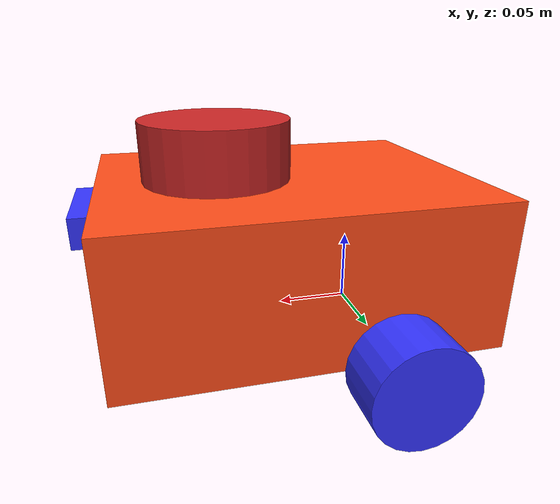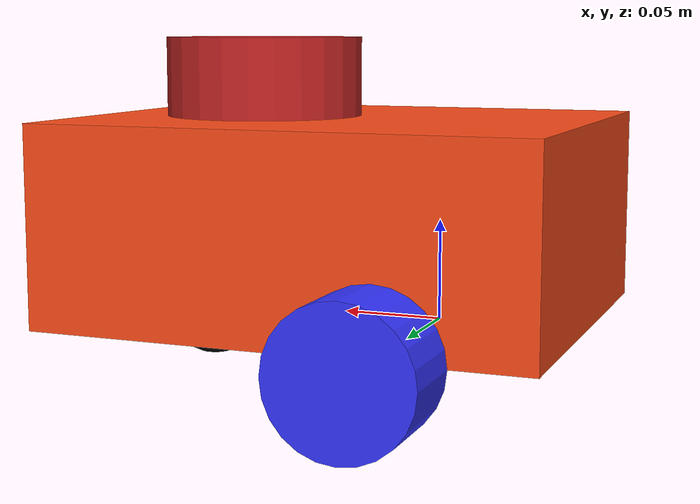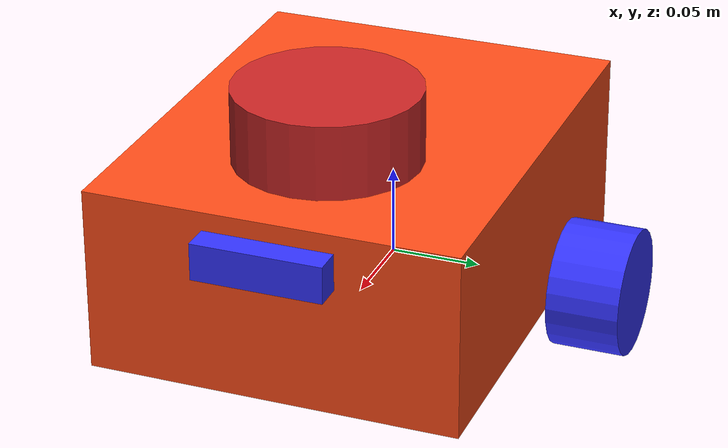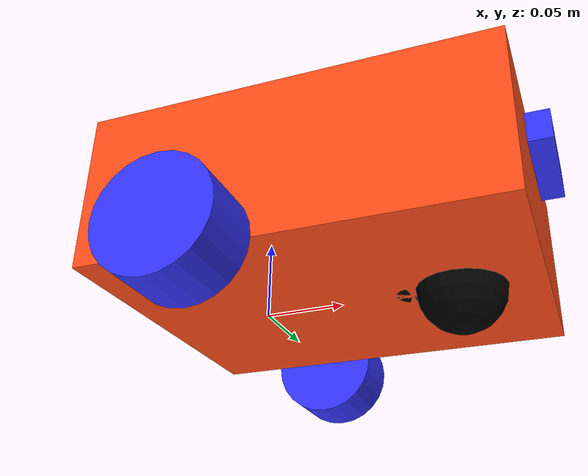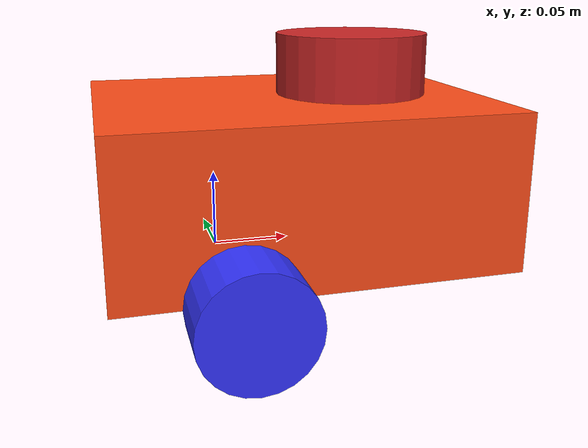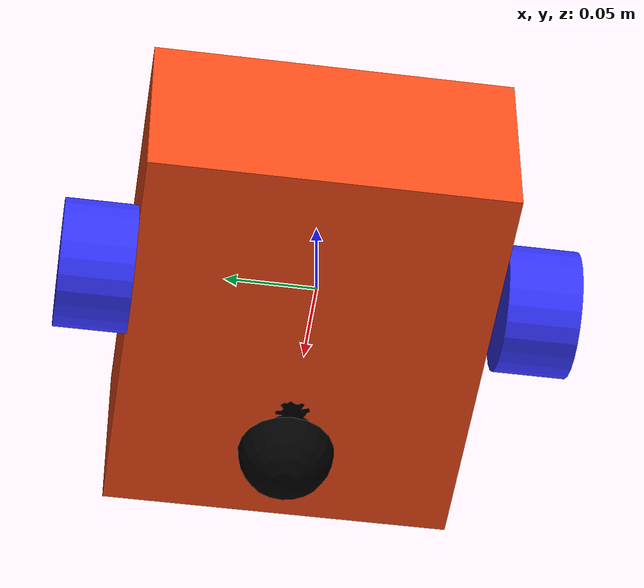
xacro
<?xml version="1.0"?>
<robot xmlns:xacro="http://www.ros.org/wiki/xacro"  name="robot">

    <xacro:include filename="/home/thanhtan/ros_ws/src/my_bot/description/robot_core.xacro" /> <!--Tệp mô tả tổng quan hình dạng, tính chất robot-->

    <xacro:include filename="/home/thanhtan/ros_ws/src/my_bot/description/gazebo_control.xacro" /> <!-- Tệp điều khiển robot trong môi trường Gazebo -->

    <xacro:include filename="/home/thanhtan/ros_ws/src/my_bot/description/lidar.xacro" />

    <xacro:include filename="/home/thanhtan/ros_ws/src/my_bot/description/camera.xacro" />

</robot>

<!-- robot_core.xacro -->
<robot xmlns:xacro="http://www.ros.org/wiki/xacro" >

    <xacro:include filename="inertial_macros.xacro"/>

    <material name="white">
        <color rgba="1 1 1 1" />
    </material>

    <material name="orange">
        <color rgba="1 0.3 0.1 1" />
    </material>

    <material name="blue">
        <color rgba="0.2 0.2 1 1" />
    </material>

    <material name="black">
        <color rgba="0 0 0 1" />
    </material>

    <!-- BASE LINK -->

    <link name="base_link">

    </link>

    <!-- BASE_FOOTPRINT LINK -->

    <joint name="base_footprint_joint" type="fixed">
        <parent link="base_link"/>
        <child link="base_footprint"/>
        <origin xyz="0 0 0" rpy="0 0 0"/>
    </joint>

    <link name="base_footprint">
    </link>

    <!-- CHASSIS LINK -->

    <joint name="chassis_joint" type="fixed">
        <parent link="base_link"/>
        <child link="chassis"/>
        <origin xyz="-0.075 0 0"/>
    </joint>

    <link name="chassis">
        <visual>
            <origin xyz="0.125 0 0.05"/>
            <geometry>
                <box size="0.25 0.2 0.10"/>
            </geometry>
            <material name = "orange"/>
        </visual>
        <collision>
             <origin xyz="0.125 0 0.05"/>
            <geometry>
                <box size="0.25 0.2 0.10"/>
            </geometry>
        </collision>
        <xacro:inertial_box mass="0.5" x="0.25" y="0.20" z="0.10">
            <origin xyz="0.125 0 0.05" rpy="0 0 0"/>
        </xacro:inertial_box>
    </link>

    <gazebo reference="chassis">
        <material>Gazebo/Orange</material>
    </gazebo>

    <!-- LEFT WHEEL LINK -->

    <joint name="left_wheel_joint" type="continuous">
        <parent link="base_link"/>
        <child link="left_wheel"/>
        <origin xyz="0 0.12 0" rpy="-${pi/2} 0 0"/>
        <axis xyz="0 0 1"/>
    </joint>

    <link name="left_wheel">
        <visual>
            <geometry>
                <cylinder radius="0.035" length="0.04"/>
            </geometry>
            <material name="blue"/>
        </visual>
        <collision>
            <geometry>
                <cylinder radius="0.035" length="0.04"/>
            </geometry>
        </collision>
        <xacro:inertial_cylinder mass="0.1" length="0.04" radius="0.035">
            <origin xyz="0 0 0" rpy="0 0 0"/>
        </xacro:inertial_cylinder>
    </link>

    <gazebo reference="left_wheel">
        <material>Gazebo/Blue</material>
    </gazebo>

    <!-- RIGHT WHEEL LINK -->

    <joint name="right_wheel_joint" type="continuous">
        <parent link="base_link"/>
        <child link="right_wheel"/>
        <origin xyz="0 -0.12 0" rpy="${pi/2} 0 0"/>
        <axis xyz="0 0 -1"/>
    </joint>

    <link name="right_wheel">
        <visual>
            <geometry>
                <cylinder radius="0.035" length="0.04"/>
            </geometry>
            <material name="blue"/>
        </visual>
        <collision>
            <geometry>
                <cylinder radius="0.035" length="0.04"/>
            </geometry>
        </collision>
        <xacro:inertial_cylinder mass="0.1" length="0.04" radius="0.035">
            <origin xyz="0 0 0" rpy="0 0 0"/>
        </xacro:inertial_cylinder>
    </link>

    <gazebo reference="right_wheel">
        <material>Gazebo/Blue</material>
    </gazebo>

    <!-- CASTOR WHEEL LINK -->

    <joint name="castor_wheel_joint" type="fixed">
        <parent link="chassis"/>
        <child link="castor_wheel"/>
        <origin xyz="0.20 0 0"/>
    </joint>

    <link name="castor_wheel">
        <visual>
            <geometry>
                <sphere radius="0.0275"/>
            </geometry>
            <material name="black"/>
        </visual>
        <collision>
            <geometry>
                <sphere radius="0.0275"/>
            </geometry>
        </collision>
        <xacro:inertial_sphere mass="0.1" radius="0.0275">
            <origin xyz="0 0 0" rpy="0 0 0"/>
        </xacro:inertial_sphere>
    </link>

    <gazebo reference="castor_wheel">
        <material>Gazebo/Black</material>
        <mu1 value="0.001"/>
        <mu2 value="0.001"/>
    </gazebo>

</robot>

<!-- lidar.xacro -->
<robot xmlns:xacro="http://www.ros.org/wiki/xacro" >

    <joint name="laser_joint" type="fixed">
        <parent link="chassis"/>
        <child link="laser_frame"/>
        <origin xyz="0.17 0 0.10" rpy="0 0 0"/>
    </joint>

    <link name="laser_frame">
        <visual>
            <geometry>
                <cylinder radius="0.05" length="0.08"/>
            </geometry>
            <material name="red"/>
        </visual>
        <visual>
            <origin xyz="0 0 -0.05"/>
            <geometry>
                <cylinder radius="0.01" length="0.1"/>
            </geometry>
            <material name="black"/>
        </visual>
        <collision>
            <geometry>
                <cylinder radius="0.05" length="0.08"/>
            </geometry>
        </collision>
        <xacro:inertial_cylinder mass="0.1" length="0.08" radius="0.05">
            <origin xyz="0 0 0" rpy="0 0 0"/>
        </xacro:inertial_cylinder>
    </link>

    <gazebo reference="laser_frame">
        <material>Gazebo/Red</material>
        <sensor name="laser" type="ray">
            <pose> 0 0 0 0 0 0 </pose>
            <visualize>true</visualize> <!-- visualize can be true or false depending upon the user interest to operate lidar -->
            <update_rate>10</update_rate>
            <ray>
                <scan>
                    <horizontal>
                        <samples>360</samples>
                        <min_angle>-3.14</min_angle>
                        <max_angle>3.14</max_angle>
                    </horizontal>
                </scan>
                <range>
                    <min>0.3</min>
                    <max>12</max>
                </range>
            </ray>
            <plugin name="laser_controller" filename="libgazebo_ros_ray_sensor.so">
                <ros>
                    <argument>~/out:=scan</argument>
                </ros>
                <output_type>sensor_msgs/LaserScan</output_type>
                <frame_name>laser_frame</frame_name>
            </plugin>
        </sensor>
    </gazebo>

</robot>

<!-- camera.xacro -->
<robot xmlns:xacro="http://www.ros.org/wiki/xacro" >

    <joint name="camera_joint" type="fixed">
        <parent link="chassis"/>
        <child link="camera_link"/>
        <origin xyz="0.25 0 0.08" rpy="0 0 0"/>
    </joint>

    <link name="camera_link">
        <visual>
            <geometry>
                <box size="0.03 0.07 0.02"/>
            </geometry>
            <material name="blue"/>
        </visual>
    </link>

    <joint name="camera_optical_joint" type="fixed">
        <parent link="camera_link"/>
        <child link="camera_link_optical"/>
        <origin xyz="0 0 0" rpy="${-pi/2} 0 ${-pi/2}"/>
    </joint>

    <link name="camera_link_optical"></link>

    <gazebo reference="camera_link">
        <material>Gazebo/Blue</material>

        <sensor name="camera" type="camera">
            <pose> 0 0 0 0 0 0 </pose>
            <visualize>true</visualize>
            <update_rate>10</update_rate>
            <camera>
                <horizontal_fov>1.089</horizontal_fov>
                <image>
                    <format>R8G8B8</format>
                    <width>640</width>
                    <height>480</height> <!--The image is 640x480 pixels, stored as 8-bit RGB-->
                </image>
                <clip>
                    <near>0.05</near>
                    <far>8.0</far>
                </clip>
            </camera>
            <plugin name="camera_controller" filename="libgazebo_ros_camera.so">
                <frame_name>camera_link_optical</frame_name>
            </plugin>
        </sensor>
    </gazebo>

</robot>
